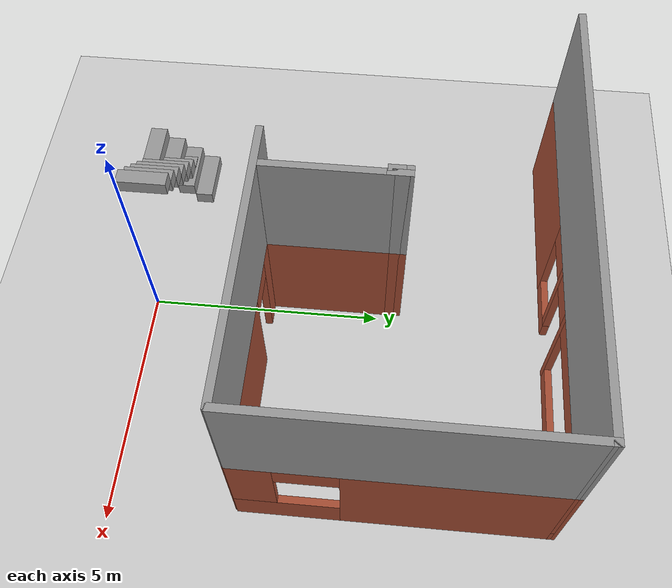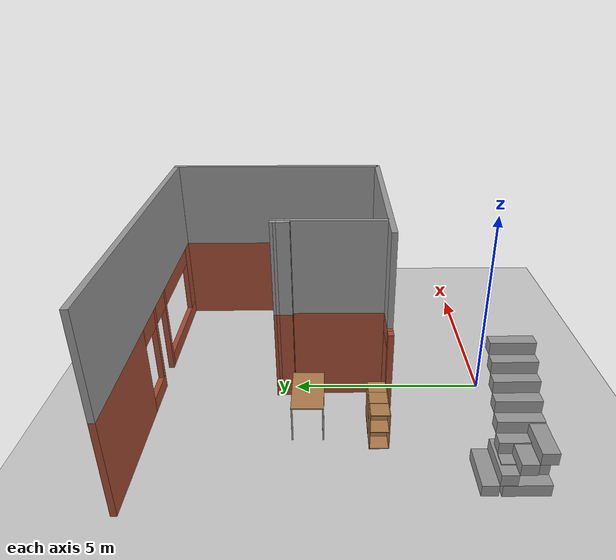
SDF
<sdf version="1.7">
 <world name="default">
  <model name="ground_plane">
   <static>1</static>
   <link name="link">
    <collision name="collision">
     <geometry><plane><normal>0 0 1</normal><size>100 100</size></plane></geometry>
     <surface><friction><ode><mu>100</mu><mu2>50</mu2></ode></friction></surface>
    </collision>
    <visual name="visual">
     <cast_shadows>0</cast_shadows>
     <geometry><plane><normal>0 0 1</normal><size>100 100</size></plane></geometry>
     <material>
      <script><uri>file://media/materials/scripts/gazebo.material</uri><name>Gazebo/Grey</name></script>
     </material>
    </visual>
   </link>
  </model>
  <model name="ZuHause">
   <pose>0.001955 2.012 0 0 -0 0</pose>
   <link name="Stairs_4">
    <visual name="Stairs_4_Visual_0">
     <pose>-3.51572 -1.42469 0.15 0 -0 0</pose>
     <geometry><box><size>1.2 0.391837 0.3</size></box></geometry>
     <material>
      <script><uri>file://media/materials/scripts/gazebo.material</uri><name>Gazebo/Grey</name></script>
      <ambient>1 1 1 1</ambient>
     </material>
     <meta><layer>0</layer></meta>
    </visual>
    <collision name="Stairs_4_Collision_0">
     <geometry><box><size>1.2 0.391837 0.3</size></box></geometry>
     <pose>-3.51572 -1.42469 0.15 0 -0 0</pose>
    </collision>
    <visual name="Stairs_4_Visual_1">
     <pose>-3.51572 -1.81652 0.45 0 -0 0</pose>
     <geometry><box><size>1.2 0.391837 0.3</size></box></geometry>
     <material>
      <script><uri>file://media/materials/scripts/gazebo.material</uri><name>Gazebo/Grey</name></script>
      <ambient>1 1 1 1</ambient>
     </material>
     <meta><layer>0</layer></meta>
    </visual>
    <collision name="Stairs_4_Collision_1">
     <geometry><box><size>1.2 0.391837 0.3</size></box></geometry>
     <pose>-3.51572 -1.81652 0.45 0 -0 0</pose>
    </collision>
    <visual name="Stairs_4_Visual_2">
     <pose>-3.51572 -2.20836 0.75 0 -0 0</pose>
     <geometry><box><size>1.2 0.391837 0.3</size></box></geometry>
     <material>
      <script><uri>file://media/materials/scripts/gazebo.material</uri><name>Gazebo/Grey</name></script>
      <ambient>1 1 1 1</ambient>
     </material>
     <meta><layer>0</layer></meta>
    </visual>
    <collision name="Stairs_4_Collision_2">
     <geometry><box><size>1.2 0.391837 0.3</size></box></geometry>
     <pose>-3.51572 -2.20836 0.75 0 -0 0</pose>
    </collision>
    <visual name="Stairs_4_Visual_3">
     <pose>-3.51572 -2.6002 1.05 0 -0 0</pose>
     <geometry><box><size>1.2 0.391837 0.3</size></box></geometry>
     <material>
      <script><uri>file://media/materials/scripts/gazebo.material</uri><name>Gazebo/Grey</name></script>
      <ambient>1 1 1 1</ambient>
     </material>
     <meta><layer>0</layer></meta>
    </visual>
    <collision name="Stairs_4_Collision_3">
     <geometry><box><size>1.2 0.391837 0.3</size></box></geometry>
     <pose>-3.51572 -2.6002 1.05 0 -0 0</pose>
    </collision>
   </link>
   <link name="Stairs_6">
    <visual name="Stairs_6_Visual_0">
     <pose>-3.96152 -2.23631 0.15625 0 -0 1.5708</pose>
     <geometry><box><size>1.1 0.336932 0.3125</size></box></geometry>
     <material>
      <script><uri>file://media/materials/scripts/gazebo.material</uri><name>Gazebo/Grey</name></script>
      <ambient>1 1 1 1</ambient>
     </material>
     <meta><layer>0</layer></meta>
    </visual>
    <collision name="Stairs_6_Collision_0">
     <geometry><box><size>1.1 0.336932 0.3125</size></box></geometry>
     <pose>-3.96152 -2.23631 0.15625 0 -0 1.5708</pose>
    </collision>
    <visual name="Stairs_6_Visual_1">
     <pose>-3.62459 -2.23631 0.46875 0 -0 1.5708</pose>
     <geometry><box><size>1.1 0.336932 0.3125</size></box></geometry>
     <material>
      <script><uri>file://media/materials/scripts/gazebo.material</uri><name>Gazebo/Grey</name></script>
      <ambient>1 1 1 1</ambient>
     </material>
     <meta><layer>0</layer></meta>
    </visual>
    <collision name="Stairs_6_Collision_1">
     <geometry><box><size>1.1 0.336932 0.3125</size></box></geometry>
     <pose>-3.62459 -2.23631 0.46875 0 -0 1.5708</pose>
    </collision>
    <visual name="Stairs_6_Visual_2">
     <pose>-3.28765 -2.23631 0.78125 0 -0 1.5708</pose>
     <geometry><box><size>1.1 0.336932 0.3125</size></box></geometry>
     <material>
      <script><uri>file://media/materials/scripts/gazebo.material</uri><name>Gazebo/Grey</name></script>
      <ambient>1 1 1 1</ambient>
     </material>
     <meta><layer>0</layer></meta>
    </visual>
    <collision name="Stairs_6_Collision_2">
     <geometry><box><size>1.1 0.336932 0.3125</size></box></geometry>
     <pose>-3.28765 -2.23631 0.78125 0 -0 1.5708</pose>
    </collision>
    <visual name="Stairs_6_Visual_3">
     <pose>-2.95072 -2.23631 1.09375 0 -0 1.5708</pose>
     <geometry><box><size>1.1 0.336932 0.3125</size></box></geometry>
     <material>
      <script><uri>file://media/materials/scripts/gazebo.material</uri><name>Gazebo/Grey</name></script>
      <ambient>1 1 1 1</ambient>
     </material>
     <meta><layer>0</layer></meta>
    </visual>
    <collision name="Stairs_6_Collision_3">
     <geometry><box><size>1.1 0.336932 0.3125</size></box></geometry>
     <pose>-2.95072 -2.23631 1.09375 0 -0 1.5708</pose>
    </collision>
    <visual name="Stairs_6_Visual_4">
     <pose>-2.61379 -2.23631 1.40625 0 -0 1.5708</pose>
     <geometry><box><size>1.1 0.336932 0.3125</size></box></geometry>
     <material>
      <script><uri>file://media/materials/scripts/gazebo.material</uri><name>Gazebo/Grey</name></script>
      <ambient>1 1 1 1</ambient>
     </material>
     <meta><layer>0</layer></meta>
    </visual>
    <collision name="Stairs_6_Collision_4">
     <geometry><box><size>1.1 0.336932 0.3125</size></box></geometry>
     <pose>-2.61379 -2.23631 1.40625 0 -0 1.5708</pose>
    </collision>
    <visual name="Stairs_6_Visual_5">
     <pose>-2.27686 -2.23631 1.71875 0 -0 1.5708</pose>
     <geometry><box><size>1.1 0.336932 0.3125</size></box></geometry>
     <material>
      <script><uri>file://media/materials/scripts/gazebo.material</uri><name>Gazebo/Grey</name></script>
      <ambient>1 1 1 1</ambient>
     </material>
     <meta><layer>0</layer></meta>
    </visual>
    <collision name="Stairs_6_Collision_5">
     <geometry><box><size>1.1 0.336932 0.3125</size></box></geometry>
     <pose>-2.27686 -2.23631 1.71875 0 -0 1.5708</pose>
    </collision>
    <visual name="Stairs_6_Visual_6">
     <pose>-1.93993 -2.23631 2.03125 0 -0 1.5708</pose>
     <geometry><box><size>1.1 0.336932 0.3125</size></box></geometry>
     <material>
      <script><uri>file://media/materials/scripts/gazebo.material</uri><name>Gazebo/Grey</name></script>
      <ambient>1 1 1 1</ambient>
     </material>
     <meta><layer>0</layer></meta>
    </visual>
    <collision name="Stairs_6_Collision_6">
     <geometry><box><size>1.1 0.336932 0.3125</size></box></geometry>
     <pose>-1.93993 -2.23631 2.03125 0 -0 1.5708</pose>
    </collision>
    <visual name="Stairs_6_Visual_7">
     <pose>-1.60299 -2.23631 2.34375 0 -0 1.5708</pose>
     <geometry><box><size>1.1 0.336932 0.3125</size></box></geometry>
     <material>
      <script><uri>file://media/materials/scripts/gazebo.material</uri><name>Gazebo/Grey</name></script>
      <ambient>1 1 1 1</ambient>
     </material>
     <meta><layer>0</layer></meta>
    </visual>
    <collision name="Stairs_6_Collision_7">
     <geometry><box><size>1.1 0.336932 0.3125</size></box></geometry>
     <pose>-1.60299 -2.23631 2.34375 0 -0 1.5708</pose>
    </collision>
   </link>
   <link name="Wall_101">
    <pose>-0.005313 6.7116 0 0 -0 0.005871</pose>
    <visual name="Wall_101_Visual_0">
     <pose>-2.86108 0 1.25 0 -0 0</pose>
     <geometry><box><size>3.5291 0.15 2.5</size></box></geometry>
     <material>
      <script><uri>file://media/materials/scripts/gazebo.material</uri><name>Gazebo/Bricks</name></script>
      <ambient>1 1 1 1</ambient>
     </material>
     <meta><layer>0</layer></meta>
    </visual>
    <collision name="Wall_101_Collision_0">
     <geometry><box><size>3.5291 0.15 2.5</size></box></geometry>
     <pose>-2.86108 0 1.25 0 -0 0</pose>
    </collision>
    <visual name="Wall_101_Visual_1">
     <pose>1.05138 0 1.25 0 -0 0</pose>
     <geometry><box><size>0.161287 0.15 2.5</size></box></geometry>
     <material>
      <script><uri>file://media/materials/scripts/gazebo.material</uri><name>Gazebo/Bricks</name></script>
      <ambient>1 1 1 1</ambient>
     </material>
     <meta><layer>0</layer></meta>
    </visual>
    <collision name="Wall_101_Collision_1">
     <geometry><box><size>0.161287 0.15 2.5</size></box></geometry>
     <pose>1.05138 0 1.25 0 -0 0</pose>
    </collision>
    <visual name="Wall_101_Visual_2">
     <pose>-0.512894 0 0.2 0 -0 0</pose>
     <geometry><box><size>1.16726 0.15 0.4</size></box></geometry>
     <material>
      <script><uri>file://media/materials/scripts/gazebo.material</uri><name>Gazebo/Bricks</name></script>
      <ambient>1 1 1 1</ambient>
     </material>
     <meta><layer>0</layer></meta>
    </visual>
    <collision name="Wall_101_Collision_2">
     <geometry><box><size>1.16726 0.15 0.4</size></box></geometry>
     <pose>-0.512894 0 0.2 0 -0 0</pose>
    </collision>
    <visual name="Wall_101_Visual_3">
     <pose>2.87882 0 0.2 0 -0 0</pose>
     <geometry><box><size>3.4936 0.15 0.4</size></box></geometry>
     <material>
      <script><uri>file://media/materials/scripts/gazebo.material</uri><name>Gazebo/Bricks</name></script>
      <ambient>1 1 1 1</ambient>
     </material>
     <meta><layer>0</layer></meta>
    </visual>
    <collision name="Wall_101_Collision_3">
     <geometry><box><size>3.4936 0.15 0.4</size></box></geometry>
     <pose>2.87882 0 0.2 0 -0 0</pose>
    </collision>
    <visual name="Wall_101_Visual_4">
     <pose>-0.012894 0 1.45 0 -0 0</pose>
     <geometry><box><size>0.167259 0.15 2.1</size></box></geometry>
     <material>
      <script><uri>file://media/materials/scripts/gazebo.material</uri><name>Gazebo/Bricks</name></script>
      <ambient>1 1 1 1</ambient>
     </material>
     <meta><layer>0</layer></meta>
    </visual>
    <collision name="Wall_101_Collision_4">
     <geometry><box><size>0.167259 0.15 2.1</size></box></geometry>
     <pose>-0.012894 0 1.45 0 -0 0</pose>
    </collision>
    <visual name="Wall_101_Visual_5">
     <pose>-0.012894 0 1.45 0 -0 0</pose>
     <geometry><box><size>0.167259 0.15 2.1</size></box></geometry>
     <material>
      <script><uri>file://media/materials/scripts/gazebo.material</uri><name>Gazebo/Bricks</name></script>
      <ambient>1 1 1 1</ambient>
     </material>
     <meta><layer>0</layer></meta>
    </visual>
    <collision name="Wall_101_Collision_5">
     <geometry><box><size>0.167259 0.15 2.1</size></box></geometry>
     <pose>-0.012894 0 1.45 0 -0 0</pose>
    </collision>
    <visual name="Wall_101_Visual_6">
     <pose>4.27882 0 1.45 0 -0 0</pose>
     <geometry><box><size>0.693604 0.15 2.1</size></box></geometry>
     <material>
      <script><uri>file://media/materials/scripts/gazebo.material</uri><name>Gazebo/Bricks</name></script>
      <ambient>1 1 1 1</ambient>
     </material>
     <meta><layer>0</layer></meta>
    </visual>
    <collision name="Wall_101_Collision_6">
     <geometry><box><size>0.693604 0.15 2.1</size></box></geometry>
     <pose>4.27882 0 1.45 0 -0 0</pose>
    </collision>
    <visual name="Wall_101_Visual_7">
     <pose>0.520735 0 2.25 0 -0 0</pose>
     <geometry><box><size>0.9 0.15 0.5</size></box></geometry>
     <material>
      <script><uri>file://media/materials/scripts/gazebo.material</uri><name>Gazebo/Bricks</name></script>
      <ambient>1 1 1 1</ambient>
     </material>
     <meta><layer>0</layer></meta>
    </visual>
    <collision name="Wall_101_Collision_7">
     <geometry><box><size>0.9 0.15 0.5</size></box></geometry>
     <pose>0.520735 0 2.25 0 -0 0</pose>
    </collision>
    <visual name="Wall_101_Visual_8">
     <pose>0.520735 0 2.25 0 -0 0</pose>
     <geometry><box><size>0.9 0.15 0.5</size></box></geometry>
     <material>
      <script><uri>file://media/materials/scripts/gazebo.material</uri><name>Gazebo/Bricks</name></script>
      <ambient>1 1 1 1</ambient>
     </material>
     <meta><layer>0</layer></meta>
    </visual>
    <collision name="Wall_101_Collision_8">
     <geometry><box><size>0.9 0.15 0.5</size></box></geometry>
     <pose>0.520735 0 2.25 0 -0 0</pose>
    </collision>
    <visual name="Wall_101_Visual_9">
     <pose>-0.596524 0 2.25 0 -0 0</pose>
     <geometry><box><size>1 0.15 0.5</size></box></geometry>
     <material>
      <script><uri>file://media/materials/scripts/gazebo.material</uri><name>Gazebo/Bricks</name></script>
      <ambient>1 1 1 1</ambient>
     </material>
     <meta><layer>0</layer></meta>
    </visual>
    <collision name="Wall_101_Collision_9">
     <geometry><box><size>1 0.15 0.5</size></box></geometry>
     <pose>-0.596524 0 2.25 0 -0 0</pose>
    </collision>
    <visual name="Wall_101_Visual_10">
     <pose>2.53202 0 2.25 0 -0 0</pose>
     <geometry><box><size>2.8 0.15 0.5</size></box></geometry>
     <material>
      <script><uri>file://media/materials/scripts/gazebo.material</uri><name>Gazebo/Bricks</name></script>
      <ambient>1 1 1 1</ambient>
     </material>
     <meta><layer>0</layer></meta>
    </visual>
    <collision name="Wall_101_Collision_10">
     <geometry><box><size>2.8 0.15 0.5</size></box></geometry>
     <pose>2.53202 0 2.25 0 -0 0</pose>
    </collision>
   </link>
   <link name="Wall_102">
    <pose>4.54523 3.68832 0 0 -0 -1.5708</pose>
    <visual name="Wall_102_Visual_0">
     <pose>-1.02307 0 1.25 0 -0 0</pose>
     <geometry><box><size>4.20385 0.15 2.5</size></box></geometry>
     <material>
      <script><uri>file://media/materials/scripts/gazebo.material</uri><name>Gazebo/Bricks</name></script>
      <ambient>1 1 1 1</ambient>
     </material>
     <meta><layer>0</layer></meta>
    </visual>
    <collision name="Wall_102_Collision_0">
     <geometry><box><size>4.20385 0.15 2.5</size></box></geometry>
     <pose>-1.02307 0 1.25 0 -0 0</pose>
    </collision>
    <visual name="Wall_102_Visual_1">
     <pose>2.10193 0 0.4 0 -0 0</pose>
     <geometry><box><size>2.04615 0.15 0.8</size></box></geometry>
     <material>
      <script><uri>file://media/materials/scripts/gazebo.material</uri><name>Gazebo/Bricks</name></script>
      <ambient>1 1 1 1</ambient>
     </material>
     <meta><layer>0</layer></meta>
    </visual>
    <collision name="Wall_102_Collision_1">
     <geometry><box><size>2.04615 0.15 0.8</size></box></geometry>
     <pose>2.10193 0 0.4 0 -0 0</pose>
    </collision>
    <visual name="Wall_102_Visual_2">
     <pose>2.70193 0 1.65 0 -0 0</pose>
     <geometry><box><size>0.84615 0.15 1.7</size></box></geometry>
     <material>
      <script><uri>file://media/materials/scripts/gazebo.material</uri><name>Gazebo/Bricks</name></script>
      <ambient>1 1 1 1</ambient>
     </material>
     <meta><layer>0</layer></meta>
    </visual>
    <collision name="Wall_102_Collision_2">
     <geometry><box><size>0.84615 0.15 1.7</size></box></geometry>
     <pose>2.70193 0 1.65 0 -0 0</pose>
    </collision>
    <visual name="Wall_102_Visual_3">
     <pose>1.67885 0 2.25 0 -0 0</pose>
     <geometry><box><size>1.2 0.15 0.5</size></box></geometry>
     <material>
      <script><uri>file://media/materials/scripts/gazebo.material</uri><name>Gazebo/Bricks</name></script>
      <ambient>1 1 1 1</ambient>
     </material>
     <meta><layer>0</layer></meta>
    </visual>
    <collision name="Wall_102_Collision_3">
     <geometry><box><size>1.2 0.15 0.5</size></box></geometry>
     <pose>1.67885 0 2.25 0 -0 0</pose>
    </collision>
   </link>
   <link name="Wall_104">
    <collision name="Wall_104_Collision">
     <geometry><box><size>0.5 0.15 2.5</size></box></geometry>
     <pose>0 0 1.25 0 -0 0</pose>
    </collision>
    <visual name="Wall_104_Visual">
     <pose>0 0 1.25 0 -0 0</pose>
     <geometry><box><size>0.5 0.15 2.5</size></box></geometry>
     <material>
      <script><uri>file://media/materials/scripts/gazebo.material</uri><name>Gazebo/Bricks</name></script>
      <ambient>1 1 1 1</ambient>
     </material>
     <meta><layer>0</layer></meta>
    </visual>
    <pose>-0.20586 3.25989 0 0 -0 1.5708</pose>
   </link>
   <link name="Wall_105">
    <collision name="Wall_105_Collision">
     <geometry><box><size>0.25 0.15 2.5</size></box></geometry>
     <pose>0 0 1.25 0 -0 0</pose>
    </collision>
    <visual name="Wall_105_Visual">
     <pose>0 0 1.25 0 -0 0</pose>
     <geometry><box><size>0.25 0.15 2.5</size></box></geometry>
     <material>
      <script><uri>file://media/materials/scripts/gazebo.material</uri><name>Gazebo/Bricks</name></script>
      <ambient>1 1 1 1</ambient>
     </material>
     <meta><layer>0</layer></meta>
    </visual>
    <pose>-0.25586 3.43489 0 0 -0 3.14159</pose>
   </link>
   <link name="Wall_106">
    <collision name="Wall_106_Collision">
     <geometry><box><size>0.485068 0.15 2.5</size></box></geometry>
     <pose>0 0 1.25 0 -0 0</pose>
    </collision>
    <visual name="Wall_106_Visual">
     <pose>0 0 1.25 0 -0 0</pose>
     <geometry><box><size>0.485068 0.15 2.5</size></box></geometry>
     <material>
      <script><uri>file://media/materials/scripts/gazebo.material</uri><name>Gazebo/Bricks</name></script>
      <ambient>1 1 1 1</ambient>
     </material>
     <meta><layer>0</layer></meta>
    </visual>
    <pose>-0.305851 3.26736 0 0 -0 -1.57074</pose>
   </link>
   <link name="Wall_115">
    <collision name="Wall_115_Collision">
     <geometry><box><size>5.65913 0.15 2.5</size></box></geometry>
     <pose>0 0 1.25 0 -0 0</pose>
    </collision>
    <visual name="Wall_115_Visual">
     <pose>0 0 1.25 0 -0 0</pose>
     <geometry><box><size>5.65913 0.15 2.5</size></box></geometry>
     <material>
      <script><uri>file://media/materials/scripts/gazebo.material</uri><name>Gazebo/Grey</name></script>
      <ambient>1 1 1 1</ambient>
     </material>
     <meta><layer>1</layer></meta>
    </visual>
    <pose>1.76402 0.60649 2.5 0 -0 0</pose>
   </link>
   <link name="Wall_133">
    <collision name="Wall_133_Collision">
     <geometry><box><size>2.5 0.15 2.5</size></box></geometry>
     <pose>0 0 1.25 0 -0 0</pose>
    </collision>
    <visual name="Wall_133_Visual">
     <pose>0 0 1.25 0 -0 0</pose>
     <geometry><box><size>2.5 0.15 2.5</size></box></geometry>
     <material>
      <script><uri>file://media/materials/scripts/gazebo.material</uri><name>Gazebo/Grey</name></script>
      <ambient>1 1 1 1</ambient>
     </material>
     <meta><layer>1</layer></meta>
    </visual>
    <pose>-0.20586 1.90989 2.5 0 -0 -1.5708</pose>
   </link>
   <link name="Wall_135">
    <collision name="Wall_135_Collision">
     <geometry><box><size>9.25125 0.15 2.5</size></box></geometry>
     <pose>0 0 1.25 0 -0 0</pose>
    </collision>
    <visual name="Wall_135_Visual">
     <pose>0 0 1.25 0 -0 0</pose>
     <geometry><box><size>9.25125 0.15 2.5</size></box></geometry>
     <material>
      <script><uri>file://media/materials/scripts/gazebo.material</uri><name>Gazebo/Grey</name></script>
      <ambient>1 1 1 1</ambient>
     </material>
     <meta><layer>1</layer></meta>
    </visual>
    <pose>-0.005313 6.7116 2.5 0 -0 0.005871</pose>
   </link>
   <link name="Wall_136">
    <collision name="Wall_136_Collision">
     <geometry><box><size>6.25 0.15 2.5</size></box></geometry>
     <pose>0 0 1.25 0 -0 0</pose>
    </collision>
    <visual name="Wall_136_Visual">
     <pose>0 0 1.25 0 -0 0</pose>
     <geometry><box><size>6.25 0.15 2.5</size></box></geometry>
     <material>
      <script><uri>file://media/materials/scripts/gazebo.material</uri><name>Gazebo/Grey</name></script>
      <ambient>1 1 1 1</ambient>
     </material>
     <meta><layer>1</layer></meta>
    </visual>
    <pose>4.54523 3.68832 2.5 0 -0 -1.5708</pose>
   </link>
   <link name="Wall_137">
    <collision name="Wall_137_Collision">
     <geometry><box><size>0.5 0.15 2.5</size></box></geometry>
     <pose>0 0 1.25 0 -0 0</pose>
    </collision>
    <visual name="Wall_137_Visual">
     <pose>0 0 1.25 0 -0 0</pose>
     <geometry><box><size>0.5 0.15 2.5</size></box></geometry>
     <material>
      <script><uri>file://media/materials/scripts/gazebo.material</uri><name>Gazebo/Grey</name></script>
      <ambient>1 1 1 1</ambient>
     </material>
     <meta><layer>1</layer></meta>
    </visual>
    <pose>-0.20586 3.25989 2.5 0 -0 1.5708</pose>
   </link>
   <link name="Wall_138">
    <collision name="Wall_138_Collision">
     <geometry><box><size>0.25 0.15 2.5</size></box></geometry>
     <pose>0 0 1.25 0 -0 0</pose>
    </collision>
    <visual name="Wall_138_Visual">
     <pose>0 0 1.25 0 -0 0</pose>
     <geometry><box><size>0.25 0.15 2.5</size></box></geometry>
     <material>
      <script><uri>file://media/materials/scripts/gazebo.material</uri><name>Gazebo/Grey</name></script>
      <ambient>1 1 1 1</ambient>
     </material>
     <meta><layer>1</layer></meta>
    </visual>
    <pose>-0.25586 3.43489 2.5 0 -0 3.14159</pose>
   </link>
   <link name="Wall_139">
    <collision name="Wall_139_Collision">
     <geometry><box><size>0.485061 0.15 2.5</size></box></geometry>
     <pose>0 0 1.25 0 -0 0</pose>
    </collision>
    <visual name="Wall_139_Visual">
     <pose>0 0 1.25 0 -0 0</pose>
     <geometry><box><size>0.485061 0.15 2.5</size></box></geometry>
     <material>
      <script><uri>file://media/materials/scripts/gazebo.material</uri><name>Gazebo/Grey</name></script>
      <ambient>1 1 1 1</ambient>
     </material>
     <meta><layer>1</layer></meta>
    </visual>
    <pose>-0.305851 3.26736 2.5 0 -0 -1.57074</pose>
   </link>
   <link name="Wall_53">
    <pose>1.59358 0.60649 0 0 -0 0</pose>
    <visual name="Wall_53_Visual_0">
     <pose>-2.8916 0 1.25 0 -0 0</pose>
     <geometry><box><size>0.216803 0.15 2.5</size></box></geometry>
     <material>
      <script><uri>file://media/materials/scripts/gazebo.material</uri><name>Gazebo/Bricks</name></script>
      <ambient>1 1 1 1</ambient>
     </material>
     <meta><layer>0</layer></meta>
    </visual>
    <collision name="Wall_53_Collision_0">
     <geometry><box><size>0.216803 0.15 2.5</size></box></geometry>
     <pose>-2.8916 0 1.25 0 -0 0</pose>
    </collision>
    <visual name="Wall_53_Visual_1">
     <pose>-1.5736 0 1.25 0 -0 0</pose>
     <geometry><box><size>0.619195 0.15 2.5</size></box></geometry>
     <material>
      <script><uri>file://media/materials/scripts/gazebo.material</uri><name>Gazebo/Bricks</name></script>
      <ambient>1 1 1 1</ambient>
     </material>
     <meta><layer>0</layer></meta>
    </visual>
    <collision name="Wall_53_Collision_1">
     <geometry><box><size>0.619195 0.15 2.5</size></box></geometry>
     <pose>-1.5736 0 1.25 0 -0 0</pose>
    </collision>
    <visual name="Wall_53_Visual_2">
     <pose>1.318 0 1.25 0 -0 0</pose>
     <geometry><box><size>3.364 0.15 2.5</size></box></geometry>
     <material>
      <script><uri>file://media/materials/scripts/gazebo.material</uri><name>Gazebo/Bricks</name></script>
      <ambient>1 1 1 1</ambient>
     </material>
     <meta><layer>0</layer></meta>
    </visual>
    <collision name="Wall_53_Collision_2">
     <geometry><box><size>3.364 0.15 2.5</size></box></geometry>
     <pose>1.318 0 1.25 0 -0 0</pose>
    </collision>
    <visual name="Wall_53_Visual_3">
     <pose>-2.3332 0 2.25 0 -0 0</pose>
     <geometry><box><size>0.9 0.15 0.5</size></box></geometry>
     <material>
      <script><uri>file://media/materials/scripts/gazebo.material</uri><name>Gazebo/Bricks</name></script>
      <ambient>1 1 1 1</ambient>
     </material>
     <meta><layer>0</layer></meta>
    </visual>
    <collision name="Wall_53_Collision_3">
     <geometry><box><size>0.9 0.15 0.5</size></box></geometry>
     <pose>-2.3332 0 2.25 0 -0 0</pose>
    </collision>
    <visual name="Wall_53_Visual_4">
     <pose>-0.814001 0 2.25 0 -0 0</pose>
     <geometry><box><size>0.9 0.15 0.5</size></box></geometry>
     <material>
      <script><uri>file://media/materials/scripts/gazebo.material</uri><name>Gazebo/Bricks</name></script>
      <ambient>1 1 1 1</ambient>
     </material>
     <meta><layer>0</layer></meta>
    </visual>
    <collision name="Wall_53_Collision_4">
     <geometry><box><size>0.9 0.15 0.5</size></box></geometry>
     <pose>-0.814001 0 2.25 0 -0 0</pose>
    </collision>
   </link>
   <link name="Wall_98">
    <collision name="Wall_98_Collision">
     <geometry><box><size>2.5 0.15 2.5</size></box></geometry>
     <pose>0 0 1.25 0 -0 0</pose>
    </collision>
    <visual name="Wall_98_Visual">
     <pose>0 0 1.25 0 -0 0</pose>
     <geometry><box><size>2.5 0.15 2.5</size></box></geometry>
     <material>
      <script><uri>file://media/materials/scripts/gazebo.material</uri><name>Gazebo/Bricks</name></script>
      <ambient>1 1 1 1</ambient>
     </material>
     <meta><layer>0</layer></meta>
    </visual>
    <pose>-0.20586 1.90989 0 0 -0 -1.5708</pose>
   </link>
   <static>1</static>
  </model>
  <model name="cabinet">
   <static>1</static>
   <link name="cabinet_bottom_plate">
    <inertial>
     <pose>0 0 -1 0 -0 0</pose>
     <inertia><ixx>2.05</ixx><ixy>0</ixy><ixz>0</ixz><iyy>2.05</iyy><iyz>0</iyz><izz>2.05</izz></inertia>
     <mass>25</mass>
    </inertial>
    <collision name="cabinet_bottom_plate_geom">
     <pose>0 0 0.01 0 -0 0</pose>
     <geometry><box><size>0.45 0.45 0.02</size></box></geometry>
    </collision>
    <visual name="cabinet_bottom_plate_geom_visual">
     <pose>0 0 0.01 0 -0 0</pose>
     <geometry><box><size>0.45 0.45 0.02</size></box></geometry>
     <material>
      <script><uri>file://media/materials/scripts/gazebo.material</uri><name>Gazebo/Wood</name></script>
     </material>
    </visual>
    <collision name="cabinet_bottom_plate_geom_cabinet_back_plate">
     <pose>0.235 0 0.51 0 -0 0</pose>
     <geometry><box><size>0.02 0.45 1.02</size></box></geometry>
    </collision>
    <visual name="cabinet_bottom_plate_geom_cabinet_back_plate_visual">
     <pose>0.235 0 0.51 0 -0 0</pose>
     <geometry><box><size>0.02 0.45 1.02</size></box></geometry>
     <material>
      <script><uri>file://media/materials/scripts/gazebo.material</uri><name>Gazebo/Wood</name></script>
     </material>
    </visual>
    <collision name="cabinet_bottom_plate_geom_cabinet_left_plate">
     <pose>0 0.235 0.51 0 -0 0</pose>
     <geometry><box><size>0.45 0.02 1.02</size></box></geometry>
    </collision>
    <visual name="cabinet_bottom_plate_geom_cabinet_left_plate_visual">
     <pose>0 0.235 0.51 0 -0 0</pose>
     <geometry><box><size>0.45 0.02 1.02</size></box></geometry>
     <material>
      <script><uri>file://media/materials/scripts/gazebo.material</uri><name>Gazebo/Wood</name></script>
     </material>
    </visual>
    <collision name="cabinet_bottom_plate_geom_cabinet_middle_plate">
     <pose>0 0 0.51 0 -0 0</pose>
     <geometry><box><size>0.45 0.45 0.02</size></box></geometry>
    </collision>
    <visual name="cabinet_bottom_plate_geom_cabinet_middle_plate_visual">
     <pose>0 0 0.51 0 -0 0</pose>
     <geometry><box><size>0.45 0.45 0.02</size></box></geometry>
     <material>
      <script><uri>file://media/materials/scripts/gazebo.material</uri><name>Gazebo/Wood</name></script>
     </material>
    </visual>
    <collision name="cabinet_bottom_plate_geom_cabinet_right_plate">
     <pose>0 -0.235 0.51 0 -0 0</pose>
     <geometry><box><size>0.45 0.02 1.02</size></box></geometry>
    </collision>
    <visual name="cabinet_bottom_plate_geom_cabinet_right_plate_visual">
     <pose>0 -0.235 0.51 0 -0 0</pose>
     <geometry><box><size>0.45 0.02 1.02</size></box></geometry>
     <material>
      <script><uri>file://media/materials/scripts/gazebo.material</uri><name>Gazebo/Wood</name></script>
     </material>
    </visual>
    <collision name="cabinet_bottom_plate_geom_cabinet_top_plate">
     <pose>0 0 1.01 0 -0 0</pose>
     <geometry><box><size>0.45 0.45 0.02</size></box></geometry>
    </collision>
    <visual name="cabinet_bottom_plate_geom_cabinet_top_plate_visual">
     <pose>0 0 1.01 0 -0 0</pose>
     <geometry><box><size>0.45 0.45 0.02</size></box></geometry>
     <material>
      <script><uri>file://media/materials/scripts/gazebo.material</uri><name>Gazebo/Wood</name></script>
     </material>
    </visual>
   </link>
   <pose>-1.42827 2.91325 0 0 -0 0</pose>
  </model>
  <model name="cabinet_0">
   <static>1</static>
   <link name="cabinet_bottom_plate">
    <inertial>
     <pose>0 0 -1 0 -0 0</pose>
     <inertia><ixx>2.05</ixx><ixy>0</ixy><ixz>0</ixz><iyy>2.05</iyy><iyz>0</iyz><izz>2.05</izz></inertia>
     <mass>25</mass>
    </inertial>
    <collision name="cabinet_bottom_plate_geom">
     <pose>0 0 0.01 0 -0 0</pose>
     <geometry><box><size>0.45 0.45 0.02</size></box></geometry>
    </collision>
    <visual name="cabinet_bottom_plate_geom_visual">
     <pose>0 0 0.01 0 -0 0</pose>
     <geometry><box><size>0.45 0.45 0.02</size></box></geometry>
     <material>
      <script><uri>file://media/materials/scripts/gazebo.material</uri><name>Gazebo/Wood</name></script>
     </material>
    </visual>
    <collision name="cabinet_bottom_plate_geom_cabinet_back_plate">
     <pose>0.235 0 0.51 0 -0 0</pose>
     <geometry><box><size>0.02 0.45 1.02</size></box></geometry>
    </collision>
    <visual name="cabinet_bottom_plate_geom_cabinet_back_plate_visual">
     <pose>0.235 0 0.51 0 -0 0</pose>
     <geometry><box><size>0.02 0.45 1.02</size></box></geometry>
     <material>
      <script><uri>file://media/materials/scripts/gazebo.material</uri><name>Gazebo/Wood</name></script>
     </material>
    </visual>
    <collision name="cabinet_bottom_plate_geom_cabinet_left_plate">
     <pose>0 0.235 0.51 0 -0 0</pose>
     <geometry><box><size>0.45 0.02 1.02</size></box></geometry>
    </collision>
    <visual name="cabinet_bottom_plate_geom_cabinet_left_plate_visual">
     <pose>0 0.235 0.51 0 -0 0</pose>
     <geometry><box><size>0.45 0.02 1.02</size></box></geometry>
     <material>
      <script><uri>file://media/materials/scripts/gazebo.material</uri><name>Gazebo/Wood</name></script>
     </material>
    </visual>
    <collision name="cabinet_bottom_plate_geom_cabinet_middle_plate">
     <pose>0 0 0.51 0 -0 0</pose>
     <geometry><box><size>0.45 0.45 0.02</size></box></geometry>
    </collision>
    <visual name="cabinet_bottom_plate_geom_cabinet_middle_plate_visual">
     <pose>0 0 0.51 0 -0 0</pose>
     <geometry><box><size>0.45 0.45 0.02</size></box></geometry>
     <material>
      <script><uri>file://media/materials/scripts/gazebo.material</uri><name>Gazebo/Wood</name></script>
     </material>
    </visual>
    <collision name="cabinet_bottom_plate_geom_cabinet_right_plate">
     <pose>0 -0.235 0.51 0 -0 0</pose>
     <geometry><box><size>0.45 0.02 1.02</size></box></geometry>
    </collision>
    <visual name="cabinet_bottom_plate_geom_cabinet_right_plate_visual">
     <pose>0 -0.235 0.51 0 -0 0</pose>
     <geometry><box><size>0.45 0.02 1.02</size></box></geometry>
     <material>
      <script><uri>file://media/materials/scripts/gazebo.material</uri><name>Gazebo/Wood</name></script>
     </material>
    </visual>
    <collision name="cabinet_bottom_plate_geom_cabinet_top_plate">
     <pose>0 0 1.01 0 -0 0</pose>
     <geometry><box><size>0.45 0.45 0.02</size></box></geometry>
    </collision>
    <visual name="cabinet_bottom_plate_geom_cabinet_top_plate_visual">
     <pose>0 0 1.01 0 -0 0</pose>
     <geometry><box><size>0.45 0.45 0.02</size></box></geometry>
     <material>
      <script><uri>file://media/materials/scripts/gazebo.material</uri><name>Gazebo/Wood</name></script>
     </material>
    </visual>
   </link>
   <pose>-1.87485 2.91389 0 0 -0 0</pose>
  </model>
  <model name="cabinet_1">
   <static>1</static>
   <link name="cabinet_bottom_plate">
    <inertial>
     <pose>0 0 -1 0 -0 0</pose>
     <inertia><ixx>2.05</ixx><ixy>0</ixy><ixz>0</ixz><iyy>2.05</iyy><iyz>0</iyz><izz>2.05</izz></inertia>
     <mass>25</mass>
    </inertial>
    <collision name="cabinet_bottom_plate_geom">
     <pose>0 0 0.01 0 -0 0</pose>
     <geometry><box><size>0.45 0.45 0.02</size></box></geometry>
    </collision>
    <visual name="cabinet_bottom_plate_geom_visual">
     <pose>0 0 0.01 0 -0 0</pose>
     <geometry><box><size>0.45 0.45 0.02</size></box></geometry>
     <material>
      <script><uri>file://media/materials/scripts/gazebo.material</uri><name>Gazebo/Wood</name></script>
     </material>
    </visual>
    <collision name="cabinet_bottom_plate_geom_cabinet_back_plate">
     <pose>0.235 0 0.51 0 -0 0</pose>
     <geometry><box><size>0.02 0.45 1.02</size></box></geometry>
    </collision>
    <visual name="cabinet_bottom_plate_geom_cabinet_back_plate_visual">
     <pose>0.235 0 0.51 0 -0 0</pose>
     <geometry><box><size>0.02 0.45 1.02</size></box></geometry>
     <material>
      <script><uri>file://media/materials/scripts/gazebo.material</uri><name>Gazebo/Wood</name></script>
     </material>
    </visual>
    <collision name="cabinet_bottom_plate_geom_cabinet_left_plate">
     <pose>0 0.235 0.51 0 -0 0</pose>
     <geometry><box><size>0.45 0.02 1.02</size></box></geometry>
    </collision>
    <visual name="cabinet_bottom_plate_geom_cabinet_left_plate_visual">
     <pose>0 0.235 0.51 0 -0 0</pose>
     <geometry><box><size>0.45 0.02 1.02</size></box></geometry>
     <material>
      <script><uri>file://media/materials/scripts/gazebo.material</uri><name>Gazebo/Wood</name></script>
     </material>
    </visual>
    <collision name="cabinet_bottom_plate_geom_cabinet_middle_plate">
     <pose>0 0 0.51 0 -0 0</pose>
     <geometry><box><size>0.45 0.45 0.02</size></box></geometry>
    </collision>
    <visual name="cabinet_bottom_plate_geom_cabinet_middle_plate_visual">
     <pose>0 0 0.51 0 -0 0</pose>
     <geometry><box><size>0.45 0.45 0.02</size></box></geometry>
     <material>
      <script><uri>file://media/materials/scripts/gazebo.material</uri><name>Gazebo/Wood</name></script>
     </material>
    </visual>
    <collision name="cabinet_bottom_plate_geom_cabinet_right_plate">
     <pose>0 -0.235 0.51 0 -0 0</pose>
     <geometry><box><size>0.45 0.02 1.02</size></box></geometry>
    </collision>
    <visual name="cabinet_bottom_plate_geom_cabinet_right_plate_visual">
     <pose>0 -0.235 0.51 0 -0 0</pose>
     <geometry><box><size>0.45 0.02 1.02</size></box></geometry>
     <material>
      <script><uri>file://media/materials/scripts/gazebo.material</uri><name>Gazebo/Wood</name></script>
     </material>
    </visual>
    <collision name="cabinet_bottom_plate_geom_cabinet_top_plate">
     <pose>0 0 1.01 0 -0 0</pose>
     <geometry><box><size>0.45 0.45 0.02</size></box></geometry>
    </collision>
    <visual name="cabinet_bottom_plate_geom_cabinet_top_plate_visual">
     <pose>0 0 1.01 0 -0 0</pose>
     <geometry><box><size>0.45 0.45 0.02</size></box></geometry>
     <material>
      <script><uri>file://media/materials/scripts/gazebo.material</uri><name>Gazebo/Wood</name></script>
     </material>
    </visual>
   </link>
   <pose>-2.34623 2.91073 0 0 -0 0</pose>
  </model>
  <model name="table">
   <static>1</static>
   <link name="link">
    <collision name="surface">
     <pose>0 0 1 0 -0 0</pose>
     <geometry><box><size>1.5 0.8 0.03</size></box></geometry>
     <surface><friction><ode><mu>0.6</mu><mu2>0.6</mu2></ode></friction></surface>
    </collision>
    <visual name="visual1">
     <pose>0 0 1 0 -0 0</pose>
     <geometry><box><size>1.5 0.8 0.03</size></box></geometry>
     <material>
      <script><uri>file://media/materials/scripts/gazebo.material</uri><name>Gazebo/Wood</name></script>
     </material>
    </visual>
    <collision name="front_left_leg">
     <pose>0.68 0.38 0.5 0 -0 0</pose>
     <geometry><cylinder><radius>0.02</radius><length>1</length></cylinder></geometry>
    </collision>
    <visual name="front_left_leg">
     <pose>0.68 0.38 0.5 0 -0 0</pose>
     <geometry><cylinder><radius>0.02</radius><length>1</length></cylinder></geometry>
     <material>
      <script><uri>file://media/materials/scripts/gazebo.material</uri><name>Gazebo/Grey</name></script>
     </material>
    </visual>
    <collision name="front_right_leg">
     <pose>0.68 -0.38 0.5 0 -0 0</pose>
     <geometry><cylinder><radius>0.02</radius><length>1</length></cylinder></geometry>
    </collision>
    <visual name="front_right_leg">
     <pose>0.68 -0.38 0.5 0 -0 0</pose>
     <geometry><cylinder><radius>0.02</radius><length>1</length></cylinder></geometry>
     <material>
      <script><uri>file://media/materials/scripts/gazebo.material</uri><name>Gazebo/Grey</name></script>
     </material>
    </visual>
    <collision name="back_right_leg">
     <pose>-0.68 -0.38 0.5 0 -0 0</pose>
     <geometry><cylinder><radius>0.02</radius><length>1</length></cylinder></geometry>
    </collision>
    <visual name="back_right_leg">
     <pose>-0.68 -0.38 0.5 0 -0 0</pose>
     <geometry><cylinder><radius>0.02</radius><length>1</length></cylinder></geometry>
     <material>
      <script><uri>file://media/materials/scripts/gazebo.material</uri><name>Gazebo/Grey</name></script>
     </material>
    </visual>
    <collision name="back_left_leg">
     <pose>-0.68 0.38 0.5 0 -0 0</pose>
     <geometry><cylinder><radius>0.02</radius><length>1</length></cylinder></geometry>
    </collision>
    <visual name="back_left_leg">
     <pose>-0.68 0.38 0.5 0 -0 0</pose>
     <geometry><cylinder><radius>0.02</radius><length>1</length></cylinder></geometry>
     <material>
      <script><uri>file://media/materials/scripts/gazebo.material</uri><name>Gazebo/Grey</name></script>
     </material>
    </visual>
   </link>
   <pose>-1.53748 4.64464 0 0 -0 0</pose>
  </model>
 </world>
</sdf>
